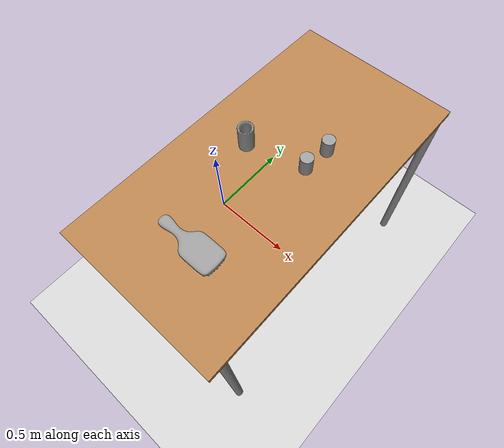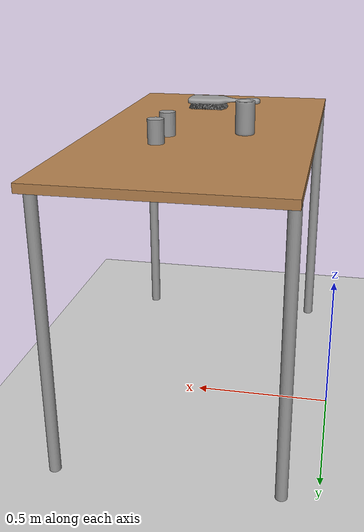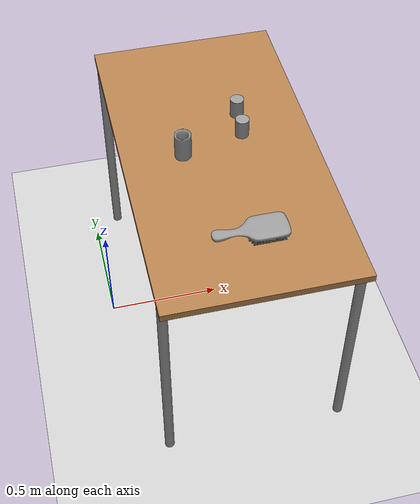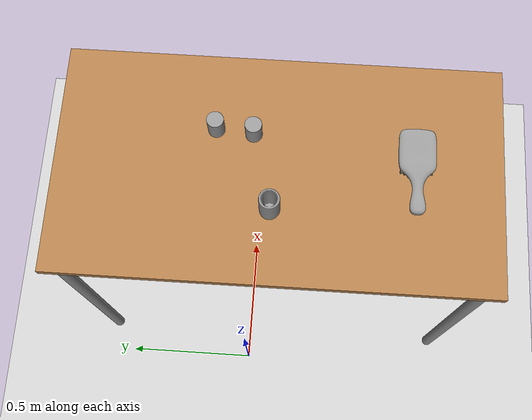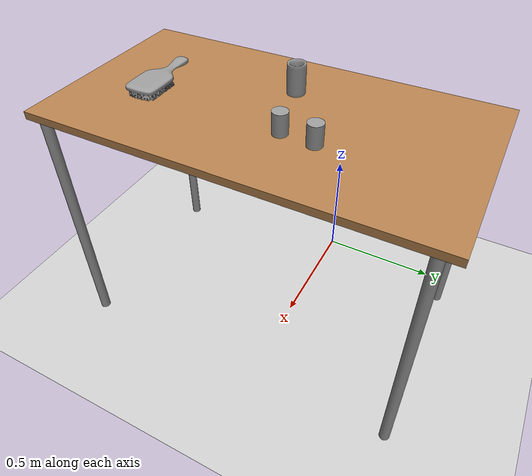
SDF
<sdf version="1.6">
 <world name="default">
  <model name="ground_plane">
   <static>1</static>
   <link name="link">
    <collision name="collision">
     <geometry><plane><normal>0 0 1</normal><size>100 100</size></plane></geometry>
     <surface><friction><ode><mu>100</mu><mu2>50</mu2></ode></friction></surface>
    </collision>
    <visual name="visual">
     <cast_shadows>0</cast_shadows>
     <geometry><plane><normal>0 0 1</normal><size>100 100</size></plane></geometry>
     <material>
      <script><uri>file://media/materials/scripts/gazebo.material</uri><name>Gazebo/Grey</name></script>
     </material>
    </visual>
   </link>
  </model>
  <light name="sun" type="directional">
   <pose>0 0 10 0 -0 0</pose>
   <diffuse>0.8 0.8 0.8 1</diffuse>
   <specular>0.2 0.2 0.2 1</specular>
   <attenuation>
    <range>1000</range>
    <constant>0.9</constant>
    <linear>0.01</linear>
    <quadratic>0.001</quadratic>
   </attenuation>
   <direction>-0.5 0.1 -0.9</direction>
  </light>
  <model name="table">
   <static>1</static>
   <link name="link">
    <collision name="surface">
     <pose>0 0 1 0 -0 0</pose>
     <geometry><box><size>1.5 0.8 0.03</size></box></geometry>
     <surface><friction><ode><mu>0.6</mu><mu2>0.6</mu2></ode></friction></surface>
    </collision>
    <visual name="visual1">
     <pose>0 0 1 0 -0 0</pose>
     <geometry><box><size>1.5 0.8 0.03</size></box></geometry>
     <material>
      <script><uri>file://media/materials/scripts/gazebo.material</uri><name>Gazebo/Wood</name></script>
     </material>
    </visual>
    <collision name="front_left_leg">
     <pose>0.68 0.38 0.5 0 -0 0</pose>
     <geometry><cylinder><radius>0.02</radius><length>1</length></cylinder></geometry>
    </collision>
    <visual name="front_left_leg">
     <pose>0.68 0.38 0.5 0 -0 0</pose>
     <geometry><cylinder><radius>0.02</radius><length>1</length></cylinder></geometry>
     <material>
      <script><uri>file://media/materials/scripts/gazebo.material</uri><name>Gazebo/Grey</name></script>
     </material>
    </visual>
    <collision name="front_right_leg">
     <pose>0.68 -0.38 0.5 0 -0 0</pose>
     <geometry><cylinder><radius>0.02</radius><length>1</length></cylinder></geometry>
    </collision>
    <visual name="front_right_leg">
     <pose>0.68 -0.38 0.5 0 -0 0</pose>
     <geometry><cylinder><radius>0.02</radius><length>1</length></cylinder></geometry>
     <material>
      <script><uri>file://media/materials/scripts/gazebo.material</uri><name>Gazebo/Grey</name></script>
     </material>
    </visual>
    <collision name="back_right_leg">
     <pose>-0.68 -0.38 0.5 0 -0 0</pose>
     <geometry><cylinder><radius>0.02</radius><length>1</length></cylinder></geometry>
    </collision>
    <visual name="back_right_leg">
     <pose>-0.68 -0.38 0.5 0 -0 0</pose>
     <geometry><cylinder><radius>0.02</radius><length>1</length></cylinder></geometry>
     <material>
      <script><uri>file://media/materials/scripts/gazebo.material</uri><name>Gazebo/Grey</name></script>
     </material>
    </visual>
    <collision name="back_left_leg">
     <pose>-0.68 0.38 0.5 0 -0 0</pose>
     <geometry><cylinder><radius>0.02</radius><length>1</length></cylinder></geometry>
    </collision>
    <visual name="back_left_leg">
     <pose>-0.68 0.38 0.5 0 -0 0</pose>
     <geometry><cylinder><radius>0.02</radius><length>1</length></cylinder></geometry>
     <material>
      <script><uri>file://media/materials/scripts/gazebo.material</uri><name>Gazebo/Grey</name></script>
     </material>
    </visual>
   </link>
   <pose>0.497407 -0.096995 0 0 -0 1.57</pose>
  </model>
  <physics name="default_physics" default="0" type="ode">
   <max_step_size>0.001</max_step_size>
   <real_time_factor>1</real_time_factor>
   <real_time_update_rate>1000</real_time_update_rate>
  </physics>
  <gravity>0 0 -9.81</gravity>
  <magnetic_field>6e-06 2.3e-05 -4.2e-05</magnetic_field>
  <atmosphere type="adiabatic"/>
  <scene><ambient>0.4 0.4 0.4 1</ambient><background>0.7 0.7 0.7 1</background><shadows>1</shadows></scene>
  <spherical_coordinates>
   <surface_model>EARTH_WGS84</surface_model>
   <latitude_deg>0</latitude_deg>
   <longitude_deg>0</longitude_deg>
   <elevation>0</elevation>
   <heading_deg>0</heading_deg>
  </spherical_coordinates>
  <model name="brush">
   <link name="link_0">
    <pose>3e-05 3e-06 0 0 -0 0</pose>
    <inertial>
     <mass>1</mass>
     <inertia>
      <ixx>0.166667</ixx>
      <ixy>0</ixy>
      <ixz>0</ixz>
      <iyy>0.166667</iyy>
      <iyz>0</iyz>
      <izz>0.166667</izz>
     </inertia>
    </inertial>
    <visual name="visual">
     <geometry>
      <mesh>
       <uri>/home/zeal/xarm_ros/src/xarm6_moveit_config/objects/brush/ClubBrush_v1.obj</uri>
       <scale>0.005 0.005 0.005</scale>
      </mesh>
     </geometry>
     <material>
      <lighting>1</lighting>
      <script><uri>file://media/materials/scripts/gazebo.material</uri><name>Gazebo/Grey</name></script>
      <shader type="pixel"/>
      <ambient>0.3 0.3 0.3 1</ambient>
      <diffuse>0.7 0.7 0.7 1</diffuse>
      <specular>0.001 0.01 0.01 1</specular>
      <emissive>0 0 0 1</emissive>
     </material>
    </visual>
    <collision name="collision">
     <geometry>
      <mesh>
       <uri>/home/zeal/xarm_ros/src/xarm6_moveit_config/objects/brush/ClubBrush_v1.obj</uri>
       <scale>0.005 0.005 0.005</scale>
      </mesh>
     </geometry>
     <surface>
      <friction>
       <ode><mu>1</mu><mu2>1</mu2><fdir1>0 0 0</fdir1><slip1>0</slip1><slip2>0</slip2></ode>
       <torsional>
        <coefficient>1</coefficient>
        <patch_radius>0</patch_radius>
        <surface_radius>0</surface_radius>
        <use_patch_radius>1</use_patch_radius>
        <ode><slip>0</slip></ode>
       </torsional>
      </friction>
      <bounce><restitution_coefficient>0</restitution_coefficient><threshold>1e+06</threshold></bounce>
      <contact>
       <collide_without_contact>0</collide_without_contact>
       <collide_without_contact_bitmask>1</collide_without_contact_bitmask>
       <collide_bitmask>1</collide_bitmask>
       <ode>
        <soft_cfm>0</soft_cfm>
        <soft_erp>0.2</soft_erp>
        <kp>1e+13</kp>
        <kd>1</kd>
        <max_vel>0.01</max_vel>
        <min_depth>0</min_depth>
       </ode>
       <bullet>
        <split_impulse>1</split_impulse>
        <split_impulse_penetration_threshold>-0.01</split_impulse_penetration_threshold>
        <soft_cfm>0</soft_cfm>
        <soft_erp>0.2</soft_erp>
        <kp>1e+13</kp>
        <kd>1</kd>
       </bullet>
      </contact>
     </surface>
    </collision>
   </link>
   <static>0</static>
   <pose>0.571124 -0.533363 1.05791 3.14159 -4e-06 1.57735</pose>
  </model>
  <model name="cup">
   <link name="link_1">
    <pose>4e-06 -3e-06 0 0 -0 0</pose>
    <inertial>
     <mass>1</mass>
     <inertia>
      <ixx>0.166667</ixx>
      <ixy>0</ixy>
      <ixz>0</ixz>
      <iyy>0.166667</iyy>
      <iyz>0</iyz>
      <izz>0.166667</izz>
     </inertia>
    </inertial>
    <visual name="visual">
     <geometry>
      <mesh>
       <uri>/home/zeal/xarm_ros/src/xarm6_moveit_config/objects/copinhooo/copinhooo.obj</uri>
       <scale>0.01 0.01 0.01</scale>
      </mesh>
     </geometry>
     <material>
      <lighting>1</lighting>
      <script><uri>file://media/materials/scripts/gazebo.material</uri><name>Gazebo/Grey</name></script>
      <shader type="pixel"/>
      <ambient>0.3 0.3 0.3 1</ambient>
      <diffuse>0.7 0.7 0.7 1</diffuse>
      <specular>0.01 0.01 0.01 1</specular>
      <emissive>0 0 0 1</emissive>
     </material>
    </visual>
    <collision name="collision">
     <geometry>
      <mesh>
       <uri>/home/zeal/xarm_ros/src/xarm6_moveit_config/objects/copinhooo/copinhooo.obj</uri>
       <scale>0.01 0.01 0.01</scale>
      </mesh>
     </geometry>
     <surface>
      <friction>
       <ode><mu>1</mu><mu2>1</mu2><fdir1>0 0 0</fdir1><slip1>0</slip1><slip2>0</slip2></ode>
       <torsional>
        <coefficient>1</coefficient>
        <patch_radius>0</patch_radius>
        <surface_radius>0</surface_radius>
        <use_patch_radius>1</use_patch_radius>
        <ode><slip>0</slip></ode>
       </torsional>
      </friction>
      <bounce><restitution_coefficient>0</restitution_coefficient><threshold>1e+06</threshold></bounce>
      <contact>
       <collide_without_contact>0</collide_without_contact>
       <collide_without_contact_bitmask>1</collide_without_contact_bitmask>
       <collide_bitmask>1</collide_bitmask>
       <ode>
        <soft_cfm>0</soft_cfm>
        <soft_erp>0.2</soft_erp>
        <kp>1e+13</kp>
        <kd>1</kd>
        <max_vel>0.01</max_vel>
        <min_depth>0</min_depth>
       </ode>
       <bullet>
        <split_impulse>1</split_impulse>
        <split_impulse_penetration_threshold>-0.01</split_impulse_penetration_threshold>
        <soft_cfm>0</soft_cfm>
        <soft_erp>0.2</soft_erp>
        <kp>1e+13</kp>
        <kd>1</kd>
       </bullet>
      </contact>
     </surface>
    </collision>
   </link>
   <static>0</static>
   <pose>0.349073 -0.078004 1.03528 1.5708 9.4e-05 0.000168</pose>
  </model>
  <model name="unit_cylinder">
   <pose>0.622189 0.118047 1.05664 3.14158 2.6e-05 3.14151</pose>
   <link name="link">
    <inertial>
     <mass>1</mass>
     <inertia><ixx>0.145833</ixx><ixy>0</ixy><ixz>0</ixz><iyy>0.145833</iyy><iyz>0</iyz><izz>0.125</izz></inertia>
    </inertial>
    <collision name="collision">
     <geometry><cylinder><radius>0.028507</radius><length>0.083287</length></cylinder></geometry>
    </collision>
    <visual name="visual">
     <geometry><cylinder><radius>0.028507</radius><length>0.083287</length></cylinder></geometry>
     <material>
      <script><name>Gazebo/Grey</name><uri>file://media/materials/scripts/gazebo.material</uri></script>
     </material>
    </visual>
   </link>
  </model>
  <model name="unit_cylinder_clone">
   <pose>0.612197 -0.00825 1.05665 -0.000159 -1.8e-05 0.589103</pose>
   <link name="link">
    <inertial>
     <mass>1</mass>
     <inertia><ixx>0.145833</ixx><ixy>0</ixy><ixz>0</ixz><iyy>0.145833</iyy><iyz>0</iyz><izz>0.125</izz></inertia>
    </inertial>
    <collision name="collision">
     <geometry><cylinder><radius>0.028507</radius><length>0.0832871</length></cylinder></geometry>
    </collision>
    <visual name="visual">
     <geometry><cylinder><radius>0.028507</radius><length>0.0832871</length></cylinder></geometry>
     <material>
      <script><name>Gazebo/Grey</name><uri>file://media/materials/scripts/gazebo.material</uri></script>
     </material>
    </visual>
   </link>
  </model>
 </world>
</sdf>
